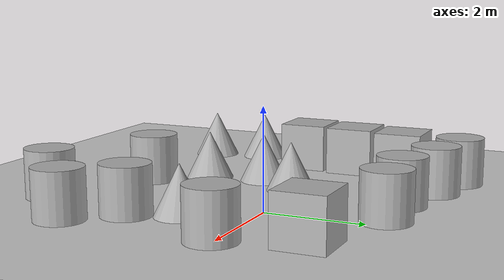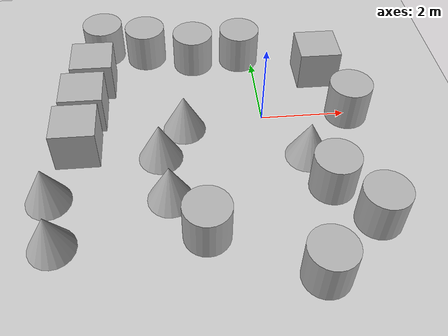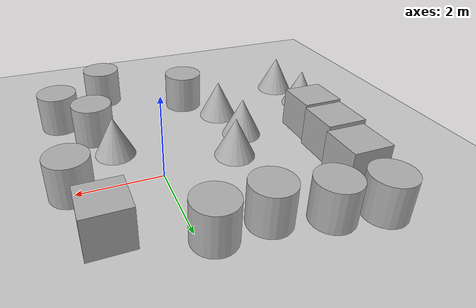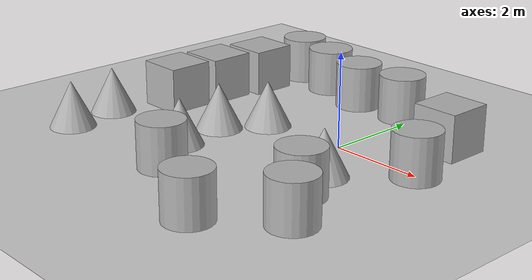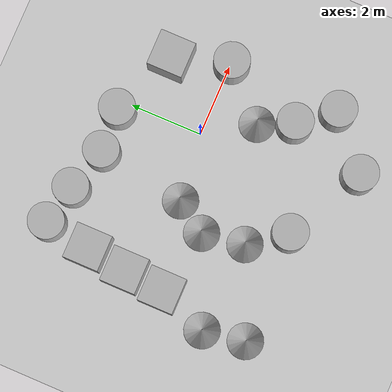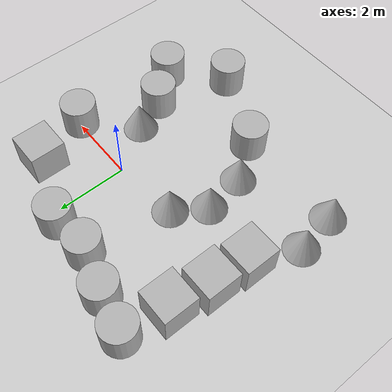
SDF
<?xml version="1.0" ?>
<sdf version='1.10'>
  <world name='test'>
    <physics name='1ms' type='ignored'>
      <max_step_size>0.001</max_step_size>
      <real_time_factor>1</real_time_factor>
      <real_time_update_rate>1000</real_time_update_rate>
    </physics>
    <plugin name='gz::sim::systems::Physics' filename='gz-sim-physics-system'/>
    <plugin name='gz::sim::systems::UserCommands' filename='gz-sim-user-commands-system'/>
    <plugin name='gz::sim::systems::SceneBroadcaster' filename='gz-sim-scene-broadcaster-system'/>
    <plugin name='gz::sim::systems::Contact' filename='gz-sim-contact-system'/>
    <gravity>0 0 -9.8000000000000007</gravity>
    <magnetic_field>5.5644999999999998e-06 2.2875799999999999e-05 -4.2388400000000002e-05</magnetic_field>
    <atmosphere type='adiabatic'/>
    <scene>
      <ambient>0.400000006 0.400000006 0.400000006 1</ambient>
      <background>0.699999988 0.699999988 0.699999988 1</background>
      <shadows>true</shadows>
    </scene>
    <model name='ground_plane'>
      <static>true</static>
      <link name='link'>
        <collision name='collision'>
          <geometry>
            <plane>
              <normal>0 0 1</normal>
              <size>100 100</size>
            </plane>
          </geometry>
          <surface>
            <friction>
              <ode/>
            </friction>
            <bounce/>
            <contact/>
          </surface>
        </collision>
        <visual name='visual'>
          <geometry>
            <plane>
              <normal>0 0 1</normal>
              <size>100 100</size>
            </plane>
          </geometry>
          <material>
            <ambient>0.800000012 0.800000012 0.800000012 1</ambient>
            <diffuse>0.800000012 0.800000012 0.800000012 1</diffuse>
            <specular>0.800000012 0.800000012 0.800000012 1</specular>
          </material>
        </visual>
        <pose>0 0 0 0 0 0</pose>
        <inertial>
          <pose>0 0 0 0 0 0</pose>
          <mass>1</mass>
          <inertia>
            <ixx>1</ixx>
            <ixy>0</ixy>
            <ixz>0</ixz>
            <iyy>1</iyy>
            <iyz>0</iyz>
            <izz>1</izz>
          </inertia>
        </inertial>
        <enable_wind>false</enable_wind>
      </link>
      <pose>0 0 0 0 0 0</pose>
      <self_collide>false</self_collide>
    </model>
    <model name='cylinder'>
      <pose>2.0444497364282563 -0.040850008938695281 0.49999942638036005 1.2906688754313503e-19 7.5525721238094088e-21 -1.4409161176409789e-20</pose>
      <link name='cylinder_link'>
        <inertial>
          <inertia>
            <ixx>0.14580000000000001</ixx>
            <ixy>0</ixy>
            <ixz>0</ixz>
            <iyy>0.14580000000000001</iyy>
            <iyz>0</iyz>
            <izz>0.125</izz>
          </inertia>
          <mass>1</mass>
          <pose>0 0 0 0 0 0</pose>
        </inertial>
        <collision name='cylinder_collision'>
          <geometry>
            <cylinder>
              <radius>0.5</radius>
              <length>1</length>
            </cylinder>
          </geometry>
          <surface>
            <friction>
              <ode/>
            </friction>
            <bounce/>
            <contact/>
          </surface>
        </collision>
        <visual name='cylinder_visual'>
          <geometry>
            <cylinder>
              <radius>0.5</radius>
              <length>1</length>
            </cylinder>
          </geometry>
          <material>
            <ambient>0.300000012 0.300000012 0.300000012 1</ambient>
            <diffuse>0.699999988 0.699999988 0.699999988 1</diffuse>
            <specular>1 1 1 1</specular>
          </material>
        </visual>
        <pose>0 0 0 0 0 0</pose>
        <enable_wind>false</enable_wind>
      </link>
      <static>false</static>
      <self_collide>false</self_collide>
    </model>
    <model name='box'>
      <pose>1.5705128197183349 1.5145624253648973 0.49999999990199806 2.163106304372845e-21 -1.6560291693952328e-21 2.2452215946946745e-23</pose>
      <link name='box_link'>
        <inertial>
          <inertia>
            <ixx>0.16666</ixx>
            <ixy>0</ixy>
            <ixz>0</ixz>
            <iyy>0.16666</iyy>
            <iyz>0</iyz>
            <izz>0.16666</izz>
          </inertia>
          <mass>1</mass>
          <pose>0 0 0 0 0 0</pose>
        </inertial>
        <collision name='box_collision'>
          <geometry>
            <box>
              <size>1 1 1</size>
            </box>
          </geometry>
          <surface>
            <friction>
              <ode/>
            </friction>
            <bounce/>
            <contact/>
          </surface>
        </collision>
        <visual name='box_visual'>
          <geometry>
            <box>
              <size>1 1 1</size>
            </box>
          </geometry>
          <material>
            <ambient>0.300000012 0.300000012 0.300000012 1</ambient>
            <diffuse>0.699999988 0.699999988 0.699999988 1</diffuse>
            <specular>1 1 1 1</specular>
          </material>
        </visual>
        <pose>0 0 0 0 0 0</pose>
        <enable_wind>false</enable_wind>
      </link>
      <static>false</static>
      <self_collide>false</self_collide>
    </model>
    <model name='cone'>
      <pose>0.85658497869668782 -1.2952757444927836 0.49999999617659074 6.8767912863758948e-11 -2.3568328165800275e-05 -0.048727061646055447</pose>
      <link name='cone_link'>
        <inertial>
          <inertia>
            <ixx>0.074999999999999997</ixx>
            <ixy>0</ixy>
            <ixz>0</ixz>
            <iyy>0.074999999999999997</iyy>
            <iyz>0</iyz>
            <izz>0.074999999999999997</izz>
          </inertia>
          <mass>1</mass>
          <pose>0 0 0 0 0 0</pose>
        </inertial>
        <collision name='cone_collision'>
          <geometry>
            <cone>
              <radius>0.5</radius>
              <length>1</length>
            </cone>
          </geometry>
          <surface>
            <friction>
              <ode/>
            </friction>
            <bounce/>
            <contact/>
          </surface>
        </collision>
        <visual name='cone_visual'>
          <geometry>
            <cone>
              <radius>0.5</radius>
              <length>1</length>
            </cone>
          </geometry>
          <material>
            <ambient>0.300000012 0.300000012 0.300000012 1</ambient>
            <diffuse>0.699999988 0.699999988 0.699999988 1</diffuse>
            <specular>1 1 1 1</specular>
          </material>
        </visual>
        <pose>0 0 0 0 0 0</pose>
        <enable_wind>false</enable_wind>
      </link>
      <static>false</static>
      <self_collide>false</self_collide>
    </model>
    <model name='cylinder_1'>
      <pose>-0.31338197629417008 2.2693821989559768 0.49999899681693183 1.2865091933574531e-19 7.8916856228410903e-21 -1.4668335419354257e-20</pose>
      <link name='cylinder_link'>
        <inertial>
          <inertia>
            <ixx>0.14580000000000001</ixx>
            <ixy>0</ixy>
            <ixz>0</ixz>
            <iyy>0.14580000000000001</iyy>
            <iyz>0</iyz>
            <izz>0.125</izz>
          </inertia>
          <mass>1</mass>
        </inertial>
        <collision name='cylinder_collision'>
          <geometry>
            <cylinder>
              <radius>0.5</radius>
              <length>1</length>
            </cylinder>
          </geometry>
          <surface>
            <friction>
              <ode/>
            </friction>
            <bounce/>
            <contact/>
          </surface>
        </collision>
        <visual name='cylinder_visual'>
          <geometry>
            <cylinder>
              <radius>0.5</radius>
              <length>1</length>
            </cylinder>
          </geometry>
          <material>
            <ambient>0.300000012 0.300000012 0.300000012 1</ambient>
            <diffuse>0.699999988 0.699999988 0.699999988 1</diffuse>
            <specular>1 1 1 1</specular>
          </material>
        </visual>
      </link>
      <static>false</static>
      <self_collide>false</self_collide>
    </model>
    <model name='cylinder_2'>
      <pose>-1.5176487821121878 2.2035298772908645 0.49999899681693183 1.2886568537722113e-19 7.2620459722997565e-21 -1.4872125423776399e-20</pose>
      <link name='cylinder_link'>
        <inertial>
          <inertia>
            <ixx>0.14580000000000001</ixx>
            <ixy>0</ixy>
            <ixz>0</ixz>
            <iyy>0.14580000000000001</iyy>
            <iyz>0</iyz>
            <izz>0.125</izz>
          </inertia>
          <mass>1</mass>
        </inertial>
        <collision name='cylinder_collision'>
          <geometry>
            <cylinder>
              <radius>0.5</radius>
              <length>1</length>
            </cylinder>
          </geometry>
          <surface>
            <friction>
              <ode/>
            </friction>
            <bounce/>
            <contact/>
          </surface>
        </collision>
        <visual name='cylinder_visual'>
          <geometry>
            <cylinder>
              <radius>0.5</radius>
              <length>1</length>
            </cylinder>
          </geometry>
          <material>
            <ambient>0.300000012 0.300000012 0.300000012 1</ambient>
            <diffuse>0.699999988 0.699999988 0.699999988 1</diffuse>
            <specular>1 1 1 1</specular>
          </material>
        </visual>
      </link>
      <static>false</static>
      <self_collide>false</self_collide>
    </model>
    <model name='cylinder_3'>
      <pose>-2.7373349043810959 2.5467361378795328 0.49999899681693183 1.3017298114497367e-19 1.2781508523752267e-20 -1.4993624779199573e-20</pose>
      <link name='cylinder_link'>
        <inertial>
          <inertia>
            <ixx>0.14580000000000001</ixx>
            <ixy>0</ixy>
            <ixz>0</ixz>
            <iyy>0.14580000000000001</iyy>
            <iyz>0</iyz>
            <izz>0.125</izz>
          </inertia>
          <mass>1</mass>
        </inertial>
        <collision name='cylinder_collision'>
          <geometry>
            <cylinder>
              <radius>0.5</radius>
              <length>1</length>
            </cylinder>
          </geometry>
          <surface>
            <friction>
              <ode/>
            </friction>
            <bounce/>
            <contact/>
          </surface>
        </collision>
        <visual name='cylinder_visual'>
          <geometry>
            <cylinder>
              <radius>0.5</radius>
              <length>1</length>
            </cylinder>
          </geometry>
          <material>
            <ambient>0.300000012 0.300000012 0.300000012 1</ambient>
            <diffuse>0.699999988 0.699999988 0.699999988 1</diffuse>
            <specular>1 1 1 1</specular>
          </material>
        </visual>
      </link>
      <static>false</static>
      <self_collide>false</self_collide>
    </model>
    <model name='cylinder_4'>
      <pose>-3.8288712503895894 2.7774252831221533 0.49999899681693183 1.2991505147364895e-19 6.9829646631047642e-21 -1.4629361978328548e-20</pose>
      <link name='cylinder_link'>
        <inertial>
          <inertia>
            <ixx>0.14580000000000001</ixx>
            <ixy>0</ixy>
            <ixz>0</ixz>
            <iyy>0.14580000000000001</iyy>
            <iyz>0</iyz>
            <izz>0.125</izz>
          </inertia>
          <mass>1</mass>
        </inertial>
        <collision name='cylinder_collision'>
          <geometry>
            <cylinder>
              <radius>0.5</radius>
              <length>1</length>
            </cylinder>
          </geometry>
          <surface>
            <friction>
              <ode/>
            </friction>
            <bounce/>
            <contact/>
          </surface>
        </collision>
        <visual name='cylinder_visual'>
          <geometry>
            <cylinder>
              <radius>0.5</radius>
              <length>1</length>
            </cylinder>
          </geometry>
          <material>
            <ambient>0.300000012 0.300000012 0.300000012 1</ambient>
            <diffuse>0.699999988 0.699999988 0.699999988 1</diffuse>
            <specular>1 1 1 1</specular>
          </material>
        </visual>
      </link>
      <static>false</static>
      <self_collide>false</self_collide>
    </model>
    <model name='box_1'>
      <pose>-4.0282336739849098 1.4988325384047763 0.49999999990199806 3.1646896529851328e-21 -1.7331945927210347e-21 -2.4708925542154503e-23</pose>
      <link name='box_link'>
        <inertial>
          <inertia>
            <ixx>0.16666</ixx>
            <ixy>0</ixy>
            <ixz>0</ixz>
            <iyy>0.16666</iyy>
            <iyz>0</iyz>
            <izz>0.16666</izz>
          </inertia>
          <mass>1</mass>
        </inertial>
        <collision name='box_collision'>
          <geometry>
            <box>
              <size>1 1 1</size>
            </box>
          </geometry>
          <surface>
            <friction>
              <ode/>
            </friction>
            <bounce/>
            <contact/>
          </surface>
        </collision>
        <visual name='box_visual'>
          <geometry>
            <box>
              <size>1 1 1</size>
            </box>
          </geometry>
          <material>
            <ambient>0.300000012 0.300000012 0.300000012 1</ambient>
            <diffuse>0.699999988 0.699999988 0.699999988 1</diffuse>
            <specular>1 1 1 1</specular>
          </material>
        </visual>
      </link>
      <static>false</static>
      <self_collide>false</self_collide>
    </model>
    <model name='box_2'>
      <pose>-4.2002170266615302 0.36320008398170911 0.49999999990199806 3.1646896529851328e-21 -1.7331945927210347e-21 -2.4708925542154503e-23</pose>
      <link name='box_link'>
        <inertial>
          <inertia>
            <ixx>0.16666</ixx>
            <ixy>0</ixy>
            <ixz>0</ixz>
            <iyy>0.16666</iyy>
            <iyz>0</iyz>
            <izz>0.16666</izz>
          </inertia>
          <mass>1</mass>
        </inertial>
        <collision name='box_collision'>
          <geometry>
            <box>
              <size>1 1 1</size>
            </box>
          </geometry>
          <surface>
            <friction>
              <ode/>
            </friction>
            <bounce/>
            <contact/>
          </surface>
        </collision>
        <visual name='box_visual'>
          <geometry>
            <box>
              <size>1 1 1</size>
            </box>
          </geometry>
          <material>
            <ambient>0.300000012 0.300000012 0.300000012 1</ambient>
            <diffuse>0.699999988 0.699999988 0.699999988 1</diffuse>
            <specular>1 1 1 1</specular>
          </material>
        </visual>
      </link>
      <static>false</static>
      <self_collide>false</self_collide>
    </model>
    <model name='box_3'>
      <pose>-4.2931561369383839 -0.74801045996490512 0.49999999990199806 3.1646896529851328e-21 -1.7331945927210347e-21 -2.4708925542154503e-23</pose>
      <link name='box_link'>
        <inertial>
          <inertia>
            <ixx>0.16666</ixx>
            <ixy>0</ixy>
            <ixz>0</ixz>
            <iyy>0.16666</iyy>
            <iyz>0</iyz>
            <izz>0.16666</izz>
          </inertia>
          <mass>1</mass>
        </inertial>
        <collision name='box_collision'>
          <geometry>
            <box>
              <size>1 1 1</size>
            </box>
          </geometry>
          <surface>
            <friction>
              <ode/>
            </friction>
            <bounce/>
            <contact/>
          </surface>
        </collision>
        <visual name='box_visual'>
          <geometry>
            <box>
              <size>1 1 1</size>
            </box>
          </geometry>
          <material>
            <ambient>0.300000012 0.300000012 0.300000012 1</ambient>
            <diffuse>0.699999988 0.699999988 0.699999988 1</diffuse>
            <specular>1 1 1 1</specular>
          </material>
        </visual>
      </link>
      <static>false</static>
      <self_collide>false</self_collide>
    </model>
    <model name='cone_1'>
      <pose>-1.8681627641632645 -0.22407875279893361 0.49999493162022535 9.8663107048711926e-06 -4.237462766782248e-05 0.00011576382092138425</pose>
      <link name='cone_link'>
        <inertial>
          <inertia>
            <ixx>0.074999999999999997</ixx>
            <ixy>0</ixy>
            <ixz>0</ixz>
            <iyy>0.074999999999999997</iyy>
            <iyz>0</iyz>
            <izz>0.074999999999999997</izz>
          </inertia>
          <mass>1</mass>
        </inertial>
        <collision name='cone_collision'>
          <geometry>
            <cone>
              <radius>0.5</radius>
              <length>1</length>
            </cone>
          </geometry>
          <surface>
            <friction>
              <ode/>
            </friction>
            <bounce/>
            <contact/>
          </surface>
        </collision>
        <visual name='cone_visual'>
          <geometry>
            <cone>
              <radius>0.5</radius>
              <length>1</length>
            </cone>
          </geometry>
          <material>
            <ambient>0.300000012 0.300000012 0.300000012 1</ambient>
            <diffuse>0.699999988 0.699999988 0.699999988 1</diffuse>
            <specular>1 1 1 1</specular>
          </material>
        </visual>
      </link>
      <static>false</static>
      <self_collide>false</self_collide>
    </model>
    <model name='cone_2'>
      <pose>-2.4472452071484136 -1.0875041952761779 0.49998810188889486 3.7331029482714175e-05 -4.1484147145384749e-05 0.0017000066510167119</pose>
      <link name='cone_link'>
        <inertial>
          <inertia>
            <ixx>0.074999999999999997</ixx>
            <ixy>0</ixy>
            <ixz>0</ixz>
            <iyy>0.074999999999999997</iyy>
            <iyz>0</iyz>
            <izz>0.074999999999999997</izz>
          </inertia>
          <mass>1</mass>
        </inertial>
        <collision name='cone_collision'>
          <geometry>
            <cone>
              <radius>0.5</radius>
              <length>1</length>
            </cone>
          </geometry>
          <surface>
            <friction>
              <ode/>
            </friction>
            <bounce/>
            <contact/>
          </surface>
        </collision>
        <visual name='cone_visual'>
          <geometry>
            <cone>
              <radius>0.5</radius>
              <length>1</length>
            </cone>
          </geometry>
          <material>
            <ambient>0.300000012 0.300000012 0.300000012 1</ambient>
            <diffuse>0.699999988 0.699999988 0.699999988 1</diffuse>
            <specular>1 1 1 1</specular>
          </material>
        </visual>
      </link>
      <static>false</static>
      <self_collide>false</self_collide>
    </model>
    <model name='cone_3'>
      <pose>-2.2662956143730448 -2.2776487712999161 0.49998356206184602 6.1158295956109879e-05 -8.8803385735783088e-05 0.0003326376315494559</pose>
      <link name='cone_link'>
        <inertial>
          <inertia>
            <ixx>0.074999999999999997</ixx>
            <ixy>0</ixy>
            <ixz>0</ixz>
            <iyy>0.074999999999999997</iyy>
            <iyz>0</iyz>
            <izz>0.074999999999999997</izz>
          </inertia>
          <mass>1</mass>
        </inertial>
        <collision name='cone_collision'>
          <geometry>
            <cone>
              <radius>0.5</radius>
              <length>1</length>
            </cone>
          </geometry>
          <surface>
            <friction>
              <ode/>
            </friction>
            <bounce/>
            <contact/>
          </surface>
        </collision>
        <visual name='cone_visual'>
          <geometry>
            <cone>
              <radius>0.5</radius>
              <length>1</length>
            </cone>
          </geometry>
          <material>
            <ambient>0.300000012 0.300000012 0.300000012 1</ambient>
            <diffuse>0.699999988 0.699999988 0.699999988 1</diffuse>
            <specular>1 1 1 1</specular>
          </material>
        </visual>
      </link>
      <static>false</static>
      <self_collide>false</self_collide>
    </model>
    <model name='cone_4'>
      <pose>-4.8388727951323682 -2.1287878175748496 0.49999157935657906 7.8851724533226473e-05 -0.00021956236427032007 0.00078295824587595029</pose>
      <link name='cone_link'>
        <inertial>
          <inertia>
            <ixx>0.074999999999999997</ixx>
            <ixy>0</ixy>
            <ixz>0</ixz>
            <iyy>0.074999999999999997</iyy>
            <iyz>0</iyz>
            <izz>0.074999999999999997</izz>
          </inertia>
          <mass>1</mass>
        </inertial>
        <collision name='cone_collision'>
          <geometry>
            <cone>
              <radius>0.5</radius>
              <length>1</length>
            </cone>
          </geometry>
          <surface>
            <friction>
              <ode/>
            </friction>
            <bounce/>
            <contact/>
          </surface>
        </collision>
        <visual name='cone_visual'>
          <geometry>
            <cone>
              <radius>0.5</radius>
              <length>1</length>
            </cone>
          </geometry>
          <material>
            <ambient>0.300000012 0.300000012 0.300000012 1</ambient>
            <diffuse>0.699999988 0.699999988 0.699999988 1</diffuse>
            <specular>1 1 1 1</specular>
          </material>
        </visual>
      </link>
      <static>false</static>
      <self_collide>false</self_collide>
    </model>
    <model name='cone_5'>
      <pose>-4.6445581042167401 -3.3040333989769377 0.49999921385682167 3.5835420487662571e-05 -0.00022706132319509208 0.00057219943470485492</pose>
      <link name='cone_link'>
        <inertial>
          <inertia>
            <ixx>0.074999999999999997</ixx>
            <ixy>0</ixy>
            <ixz>0</ixz>
            <iyy>0.074999999999999997</iyy>
            <iyz>0</iyz>
            <izz>0.074999999999999997</izz>
          </inertia>
          <mass>1</mass>
        </inertial>
        <collision name='cone_collision'>
          <geometry>
            <cone>
              <radius>0.5</radius>
              <length>1</length>
            </cone>
          </geometry>
          <surface>
            <friction>
              <ode/>
            </friction>
            <bounce/>
            <contact/>
          </surface>
        </collision>
        <visual name='cone_visual'>
          <geometry>
            <cone>
              <radius>0.5</radius>
              <length>1</length>
            </cone>
          </geometry>
          <material>
            <ambient>0.300000012 0.300000012 0.300000012 1</ambient>
            <diffuse>0.699999988 0.699999988 0.699999988 1</diffuse>
            <specular>1 1 1 1</specular>
          </material>
        </visual>
      </link>
      <static>false</static>
      <self_collide>false</self_collide>
    </model>
    <model name='cylinder_5'>
      <pose>1.2061986087510765 -2.2306225072732269 0.50000003562245687 -1.0731821436628197e-06 -4.3813005841835245e-07 8.165869576550758e-09</pose>
      <link name='cylinder_link'>
        <inertial>
          <inertia>
            <ixx>0.14580000000000001</ixx>
            <ixy>0</ixy>
            <ixz>0</ixz>
            <iyy>0.14580000000000001</iyy>
            <iyz>0</iyz>
            <izz>0.125</izz>
          </inertia>
          <mass>1</mass>
        </inertial>
        <collision name='cylinder_collision'>
          <geometry>
            <cylinder>
              <radius>0.5</radius>
              <length>1</length>
            </cylinder>
          </geometry>
          <surface>
            <friction>
              <ode/>
            </friction>
            <bounce/>
            <contact/>
          </surface>
        </collision>
        <visual name='cylinder_visual'>
          <geometry>
            <cylinder>
              <radius>0.5</radius>
              <length>1</length>
            </cylinder>
          </geometry>
          <material>
            <ambient>0.300000012 0.300000012 0.300000012 1</ambient>
            <diffuse>0.699999988 0.699999988 0.699999988 1</diffuse>
            <specular>1 1 1 1</specular>
          </material>
        </visual>
      </link>
      <static>false</static>
      <self_collide>false</self_collide>
    </model>
    <model name='cylinder_6'>
      <pose>1.9630502806619767 -3.1672823044847833 0.49999899681693183 1.2659452836520684e-19 1.2072670975130552e-20 -1.4257851885103947e-20</pose>
      <link name='cylinder_link'>
        <inertial>
          <inertia>
            <ixx>0.14580000000000001</ixx>
            <ixy>0</ixy>
            <ixz>0</ixz>
            <iyy>0.14580000000000001</iyy>
            <iyz>0</iyz>
            <izz>0.125</izz>
          </inertia>
          <mass>1</mass>
        </inertial>
        <collision name='cylinder_collision'>
          <geometry>
            <cylinder>
              <radius>0.5</radius>
              <length>1</length>
            </cylinder>
          </geometry>
          <surface>
            <friction>
              <ode/>
            </friction>
            <bounce/>
            <contact/>
          </surface>
        </collision>
        <visual name='cylinder_visual'>
          <geometry>
            <cylinder>
              <radius>0.5</radius>
              <length>1</length>
            </cylinder>
          </geometry>
          <material>
            <ambient>0.300000012 0.300000012 0.300000012 1</ambient>
            <diffuse>0.699999988 0.699999988 0.699999988 1</diffuse>
            <specular>1 1 1 1</specular>
          </material>
        </visual>
      </link>
      <static>false</static>
      <self_collide>false</self_collide>
    </model>
    <model name='cylinder_7'>
      <pose>-1.5646327902325368 -3.2628613170804615 0.49999899681693183 1.2233666430696102e-19 8.6914195229759413e-21 -1.4056051802074579e-20</pose>
      <link name='cylinder_link'>
        <inertial>
          <inertia>
            <ixx>0.14580000000000001</ixx>
            <ixy>0</ixy>
            <ixz>0</ixz>
            <iyy>0.14580000000000001</iyy>
            <iyz>0</iyz>
            <izz>0.125</izz>
          </inertia>
          <mass>1</mass>
        </inertial>
        <collision name='cylinder_collision'>
          <geometry>
            <cylinder>
              <radius>0.5</radius>
              <length>1</length>
            </cylinder>
          </geometry>
          <surface>
            <friction>
              <ode/>
            </friction>
            <bounce/>
            <contact/>
          </surface>
        </collision>
        <visual name='cylinder_visual'>
          <geometry>
            <cylinder>
              <radius>0.5</radius>
              <length>1</length>
            </cylinder>
          </geometry>
          <material>
            <ambient>0.300000012 0.300000012 0.300000012 1</ambient>
            <diffuse>0.699999988 0.699999988 0.699999988 1</diffuse>
            <specular>1 1 1 1</specular>
          </material>
        </visual>
      </link>
      <static>false</static>
      <self_collide>false</self_collide>
    </model>
    <model name='cylinder_8'>
      <pose>0.60965987034614288 -4.3548094444981986 0.49999899681693183 1.3086078461907718e-19 9.6590057222103068e-21 -1.4270428332314832e-20</pose>
      <link name='cylinder_link'>
        <inertial>
          <inertia>
            <ixx>0.14580000000000001</ixx>
            <ixy>0</ixy>
            <ixz>0</ixz>
            <iyy>0.14580000000000001</iyy>
            <iyz>0</iyz>
            <izz>0.125</izz>
          </inertia>
          <mass>1</mass>
        </inertial>
        <collision name='cylinder_collision'>
          <geometry>
            <cylinder>
              <radius>0.5</radius>
              <length>1</length>
            </cylinder>
          </geometry>
          <surface>
            <friction>
              <ode/>
            </friction>
            <bounce/>
            <contact/>
          </surface>
        </collision>
        <visual name='cylinder_visual'>
          <geometry>
            <cylinder>
              <radius>0.5</radius>
              <length>1</length>
            </cylinder>
          </geometry>
          <material>
            <ambient>0.300000012 0.300000012 0.300000012 1</ambient>
            <diffuse>0.699999988 0.699999988 0.699999988 1</diffuse>
            <specular>1 1 1 1</specular>
          </material>
        </visual>
      </link>
      <static>false</static>
      <self_collide>false</self_collide>
    </model>
    <light name='sun' type='directional'>
      <pose>0 0 10 0 0 0</pose>
      <cast_shadows>true</cast_shadows>
      <intensity>1</intensity>
      <direction>-0.5 0.10000000000000001 -0.90000000000000002</direction>
      <diffuse>0.800000012 0.800000012 0.800000012 1</diffuse>
      <specular>0.200000003 0.200000003 0.200000003 1</specular>
      <attenuation>
        <range>1000</range>
        <linear>0.01</linear>
        <constant>0.90000000000000002</constant>
        <quadratic>0.001</quadratic>
      </attenuation>
      <spot>
        <inner_angle>0</inner_angle>
        <outer_angle>0</outer_angle>
        <falloff>0</falloff>
      </spot>
    </light>
  </world>
</sdf>
